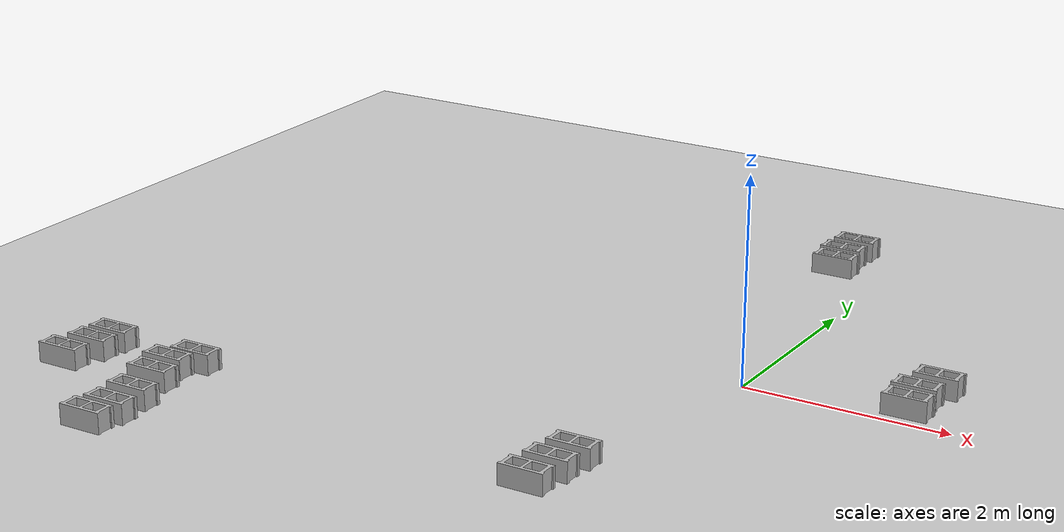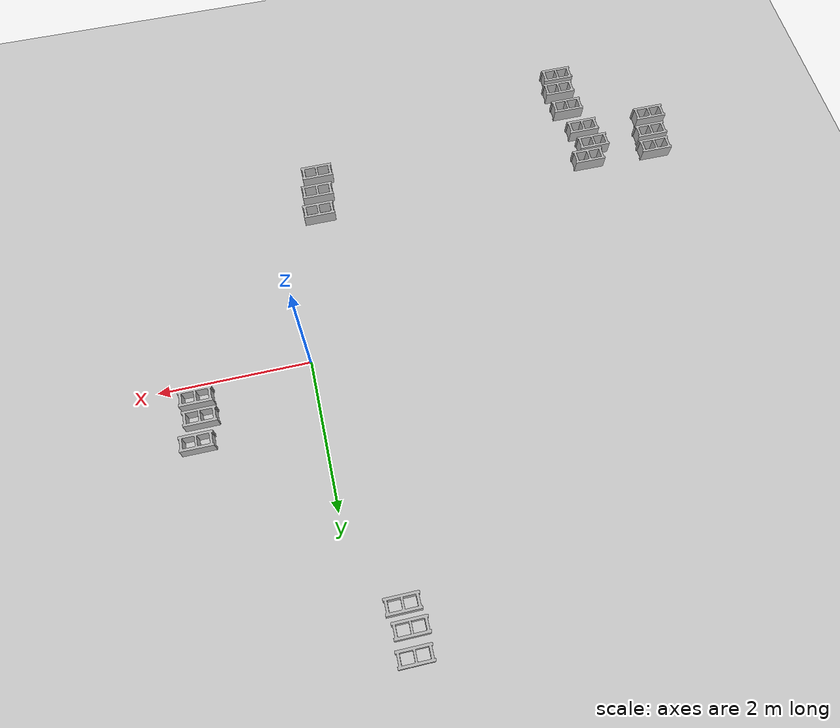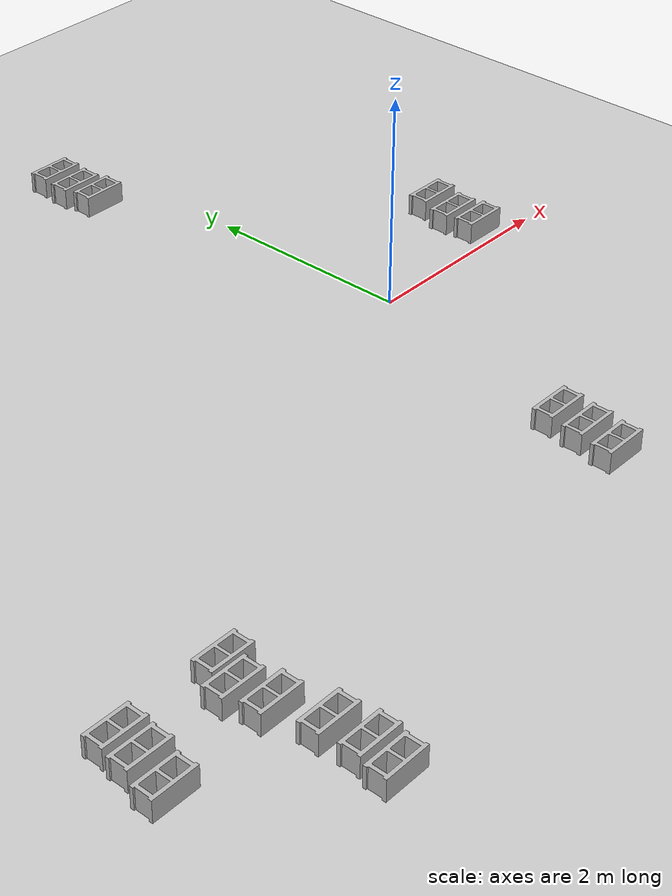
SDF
<sdf version="1.6">
 <world name="default">
  <light name="sun" type="directional">
   <pose>0 0 10 0 -0 0</pose>
   <diffuse>0.8 0.8 0.8 1</diffuse>
   <specular>0.2 0.2 0.2 1</specular>
   <attenuation>
    <range>1000</range>
    <constant>0.9</constant>
    <linear>0.01</linear>
    <quadratic>0.001</quadratic>
   </attenuation>
   <direction>-0.5 0.1 -0.9</direction>
  </light>
  <model name="ground_plane">
   <static>1</static>
   <link name="link">
    <collision name="collision">
     <geometry><plane><normal>0 0 1</normal><size>100 100</size></plane></geometry>
     <surface>
      <contact><collide_bitmask>65535</collide_bitmask></contact>
      <friction><ode><mu>100</mu><mu2>50</mu2></ode></friction>
     </surface>
    </collision>
    <visual name="visual">
     <cast_shadows>0</cast_shadows>
     <geometry><plane><normal>0 0 1</normal><size>100 100</size></plane></geometry>
     <material>
      <script><uri>file://media/materials/scripts/gazebo.material</uri><name>Gazebo/Grey</name></script>
     </material>
    </visual>
   </link>
  </model>
  <gravity>0 0 -9.8</gravity>
  <magnetic_field>6e-06 2.3e-05 -4.2e-05</magnetic_field>
  <atmosphere type="adiabatic"/>
  <physics name="default_physics" default="0" type="ode">
   <max_step_size>0.001</max_step_size>
   <real_time_factor>1</real_time_factor>
   <real_time_update_rate>1000</real_time_update_rate>
  </physics>
  <scene><ambient>0.4 0.4 0.4 1</ambient><background>0.7 0.7 0.7 1</background><shadows>1</shadows></scene>
  <audio><device>default</device></audio>
  <spherical_coordinates>
   <surface_model>EARTH_WGS84</surface_model>
   <latitude_deg>0</latitude_deg>
   <longitude_deg>0</longitude_deg>
   <elevation>0</elevation>
   <heading_deg>0</heading_deg>
  </spherical_coordinates>
  <model name="cinder_block">
   <link name="link">
    <inertial>
     <pose>0 0 0.1016 0 -0 0</pose>
     <mass>5</mass>
     <inertia>
      <ixx>0.028705</ixx>
      <ixy>0</ixy>
      <iyy>0.073708</iyy>
      <ixz>0</ixz>
      <iyz>0</iyz>
      <izz>0.06908</izz>
     </inertia>
    </inertial>
    <visual name="visual">
     <geometry><mesh><uri>model://cinder_block/meshes/cinder_block.dae</uri></mesh></geometry>
    </visual>
    <collision name="left">
     <pose>0 -0.08465 0.1016 0 -0 0</pose>
     <geometry><box><size>0.43495 0.0339 0.2032</size></box></geometry>
     <surface>
      <contact><ode><max_vel>0.1</max_vel><min_depth>0.001</min_depth></ode></contact>
      <friction><ode><mu>1</mu><mu2>1</mu2></ode></friction>
     </surface>
    </collision>
    <collision name="right">
     <pose>0 0.08465 0.1016 0 -0 0</pose>
     <geometry><box><size>0.43495 0.0339 0.2032</size></box></geometry>
     <surface>
      <contact><ode><max_vel>0.1</max_vel><min_depth>0.001</min_depth></ode></contact>
      <friction><ode><mu>1</mu><mu2>1</mu2></ode></friction>
     </surface>
    </collision>
    <collision name="front">
     <pose>0.18625 0 0.1016 0 -0 0</pose>
     <geometry><box><size>0.0339 0.1354 0.203</size></box></geometry>
     <surface>
      <contact><ode><max_vel>0.1</max_vel><min_depth>0.001</min_depth></ode></contact>
      <friction><ode><mu>1</mu><mu2>1</mu2></ode></friction>
     </surface>
    </collision>
    <collision name="middle">
     <pose>0 0 0.1016 0 -0 0</pose>
     <geometry><box><size>0.0339 0.1354 0.203</size></box></geometry>
     <surface>
      <contact><ode><max_vel>0.1</max_vel><min_depth>0.001</min_depth></ode></contact>
      <friction><ode><mu>1</mu><mu2>1</mu2></ode></friction>
     </surface>
    </collision>
    <collision name="back">
     <pose>-0.18625 0 0.1016 0 -0 0</pose>
     <geometry><box><size>0.0339 0.1354 0.203</size></box></geometry>
     <surface>
      <contact><ode><max_vel>0.1</max_vel><min_depth>0.001</min_depth></ode></contact>
      <friction><ode><mu>1</mu><mu2>1</mu2></ode></friction>
     </surface>
    </collision>
   </link>
   <pose>-0.534527 3.2056 -6e-06 -1e-06 2.8e-05 -0</pose>
  </model>
  <model name="cinder_block_0">
   <link name="link">
    <inertial>
     <pose>0 0 0.1016 0 -0 0</pose>
     <mass>5</mass>
     <inertia>
      <ixx>0.028705</ixx>
      <ixy>0</ixy>
      <iyy>0.073708</iyy>
      <ixz>0</ixz>
      <iyz>0</iyz>
      <izz>0.06908</izz>
     </inertia>
    </inertial>
    <visual name="visual">
     <geometry><mesh><uri>model://cinder_block/meshes/cinder_block.dae</uri></mesh></geometry>
    </visual>
    <collision name="left">
     <pose>0 -0.08465 0.1016 0 -0 0</pose>
     <geometry><box><size>0.43495 0.0339 0.2032</size></box></geometry>
     <surface>
      <contact><ode><max_vel>0.1</max_vel><min_depth>0.001</min_depth></ode></contact>
      <friction><ode><mu>1</mu><mu2>1</mu2></ode></friction>
     </surface>
    </collision>
    <collision name="right">
     <pose>0 0.08465 0.1016 0 -0 0</pose>
     <geometry><box><size>0.43495 0.0339 0.2032</size></box></geometry>
     <surface>
      <contact><ode><max_vel>0.1</max_vel><min_depth>0.001</min_depth></ode></contact>
      <friction><ode><mu>1</mu><mu2>1</mu2></ode></friction>
     </surface>
    </collision>
    <collision name="front">
     <pose>0.18625 0 0.1016 0 -0 0</pose>
     <geometry><box><size>0.0339 0.1354 0.203</size></box></geometry>
     <surface>
      <contact><ode><max_vel>0.1</max_vel><min_depth>0.001</min_depth></ode></contact>
      <friction><ode><mu>1</mu><mu2>1</mu2></ode></friction>
     </surface>
    </collision>
    <collision name="middle">
     <pose>0 0 0.1016 0 -0 0</pose>
     <geometry><box><size>0.0339 0.1354 0.203</size></box></geometry>
     <surface>
      <contact><ode><max_vel>0.1</max_vel><min_depth>0.001</min_depth></ode></contact>
      <friction><ode><mu>1</mu><mu2>1</mu2></ode></friction>
     </surface>
    </collision>
    <collision name="back">
     <pose>-0.18625 0 0.1016 0 -0 0</pose>
     <geometry><box><size>0.0339 0.1354 0.203</size></box></geometry>
     <surface>
      <contact><ode><max_vel>0.1</max_vel><min_depth>0.001</min_depth></ode></contact>
      <friction><ode><mu>1</mu><mu2>1</mu2></ode></friction>
     </surface>
    </collision>
   </link>
   <pose>-0.573603 3.47897 -6e-06 -1e-06 2.8e-05 -0</pose>
  </model>
  <model name="cinder_block_1">
   <link name="link">
    <inertial>
     <pose>0 0 0.1016 0 -0 0</pose>
     <mass>5</mass>
     <inertia>
      <ixx>0.028705</ixx>
      <ixy>0</ixy>
      <iyy>0.073708</iyy>
      <ixz>0</ixz>
      <iyz>0</iyz>
      <izz>0.06908</izz>
     </inertia>
    </inertial>
    <visual name="visual">
     <geometry><mesh><uri>model://cinder_block/meshes/cinder_block.dae</uri></mesh></geometry>
    </visual>
    <collision name="left">
     <pose>0 -0.08465 0.1016 0 -0 0</pose>
     <geometry><box><size>0.43495 0.0339 0.2032</size></box></geometry>
     <surface>
      <contact><ode><max_vel>0.1</max_vel><min_depth>0.001</min_depth></ode></contact>
      <friction><ode><mu>1</mu><mu2>1</mu2></ode></friction>
     </surface>
    </collision>
    <collision name="right">
     <pose>0 0.08465 0.1016 0 -0 0</pose>
     <geometry><box><size>0.43495 0.0339 0.2032</size></box></geometry>
     <surface>
      <contact><ode><max_vel>0.1</max_vel><min_depth>0.001</min_depth></ode></contact>
      <friction><ode><mu>1</mu><mu2>1</mu2></ode></friction>
     </surface>
    </collision>
    <collision name="front">
     <pose>0.18625 0 0.1016 0 -0 0</pose>
     <geometry><box><size>0.0339 0.1354 0.203</size></box></geometry>
     <surface>
      <contact><ode><max_vel>0.1</max_vel><min_depth>0.001</min_depth></ode></contact>
      <friction><ode><mu>1</mu><mu2>1</mu2></ode></friction>
     </surface>
    </collision>
    <collision name="middle">
     <pose>0 0 0.1016 0 -0 0</pose>
     <geometry><box><size>0.0339 0.1354 0.203</size></box></geometry>
     <surface>
      <contact><ode><max_vel>0.1</max_vel><min_depth>0.001</min_depth></ode></contact>
      <friction><ode><mu>1</mu><mu2>1</mu2></ode></friction>
     </surface>
    </collision>
    <collision name="back">
     <pose>-0.18625 0 0.1016 0 -0 0</pose>
     <geometry><box><size>0.0339 0.1354 0.203</size></box></geometry>
     <surface>
      <contact><ode><max_vel>0.1</max_vel><min_depth>0.001</min_depth></ode></contact>
      <friction><ode><mu>1</mu><mu2>1</mu2></ode></friction>
     </surface>
    </collision>
   </link>
   <pose>-0.554882 3.78025 -6e-06 -1e-06 2.8e-05 -0</pose>
  </model>
  <model name="cinder_block_2">
   <link name="link">
    <inertial>
     <pose>0 0 0.1016 0 -0 0</pose>
     <mass>5</mass>
     <inertia>
      <ixx>0.028705</ixx>
      <ixy>0</ixy>
      <iyy>0.073708</iyy>
      <ixz>0</ixz>
      <iyz>0</iyz>
      <izz>0.06908</izz>
     </inertia>
    </inertial>
    <visual name="visual">
     <geometry><mesh><uri>model://cinder_block/meshes/cinder_block.dae</uri></mesh></geometry>
    </visual>
    <collision name="left">
     <pose>0 -0.08465 0.1016 0 -0 0</pose>
     <geometry><box><size>0.43495 0.0339 0.2032</size></box></geometry>
     <surface>
      <contact><ode><max_vel>0.1</max_vel><min_depth>0.001</min_depth></ode></contact>
      <friction><ode><mu>1</mu><mu2>1</mu2></ode></friction>
     </surface>
    </collision>
    <collision name="right">
     <pose>0 0.08465 0.1016 0 -0 0</pose>
     <geometry><box><size>0.43495 0.0339 0.2032</size></box></geometry>
     <surface>
      <contact><ode><max_vel>0.1</max_vel><min_depth>0.001</min_depth></ode></contact>
      <friction><ode><mu>1</mu><mu2>1</mu2></ode></friction>
     </surface>
    </collision>
    <collision name="front">
     <pose>0.18625 0 0.1016 0 -0 0</pose>
     <geometry><box><size>0.0339 0.1354 0.203</size></box></geometry>
     <surface>
      <contact><ode><max_vel>0.1</max_vel><min_depth>0.001</min_depth></ode></contact>
      <friction><ode><mu>1</mu><mu2>1</mu2></ode></friction>
     </surface>
    </collision>
    <collision name="middle">
     <pose>0 0 0.1016 0 -0 0</pose>
     <geometry><box><size>0.0339 0.1354 0.203</size></box></geometry>
     <surface>
      <contact><ode><max_vel>0.1</max_vel><min_depth>0.001</min_depth></ode></contact>
      <friction><ode><mu>1</mu><mu2>1</mu2></ode></friction>
     </surface>
    </collision>
    <collision name="back">
     <pose>-0.18625 0 0.1016 0 -0 0</pose>
     <geometry><box><size>0.0339 0.1354 0.203</size></box></geometry>
     <surface>
      <contact><ode><max_vel>0.1</max_vel><min_depth>0.001</min_depth></ode></contact>
      <friction><ode><mu>1</mu><mu2>1</mu2></ode></friction>
     </surface>
    </collision>
   </link>
   <pose>1.50331 0.204319 -6e-06 -1e-06 2.8e-05 -0</pose>
  </model>
  <model name="cinder_block_3">
   <link name="link">
    <inertial>
     <pose>0 0 0.1016 0 -0 0</pose>
     <mass>5</mass>
     <inertia>
      <ixx>0.028705</ixx>
      <ixy>0</ixy>
      <iyy>0.073708</iyy>
      <ixz>0</ixz>
      <iyz>0</iyz>
      <izz>0.06908</izz>
     </inertia>
    </inertial>
    <visual name="visual">
     <geometry><mesh><uri>model://cinder_block/meshes/cinder_block.dae</uri></mesh></geometry>
    </visual>
    <collision name="left">
     <pose>0 -0.08465 0.1016 0 -0 0</pose>
     <geometry><box><size>0.43495 0.0339 0.2032</size></box></geometry>
     <surface>
      <contact><ode><max_vel>0.1</max_vel><min_depth>0.001</min_depth></ode></contact>
      <friction><ode><mu>1</mu><mu2>1</mu2></ode></friction>
     </surface>
    </collision>
    <collision name="right">
     <pose>0 0.08465 0.1016 0 -0 0</pose>
     <geometry><box><size>0.43495 0.0339 0.2032</size></box></geometry>
     <surface>
      <contact><ode><max_vel>0.1</max_vel><min_depth>0.001</min_depth></ode></contact>
      <friction><ode><mu>1</mu><mu2>1</mu2></ode></friction>
     </surface>
    </collision>
    <collision name="front">
     <pose>0.18625 0 0.1016 0 -0 0</pose>
     <geometry><box><size>0.0339 0.1354 0.203</size></box></geometry>
     <surface>
      <contact><ode><max_vel>0.1</max_vel><min_depth>0.001</min_depth></ode></contact>
      <friction><ode><mu>1</mu><mu2>1</mu2></ode></friction>
     </surface>
    </collision>
    <collision name="middle">
     <pose>0 0 0.1016 0 -0 0</pose>
     <geometry><box><size>0.0339 0.1354 0.203</size></box></geometry>
     <surface>
      <contact><ode><max_vel>0.1</max_vel><min_depth>0.001</min_depth></ode></contact>
      <friction><ode><mu>1</mu><mu2>1</mu2></ode></friction>
     </surface>
    </collision>
    <collision name="back">
     <pose>-0.18625 0 0.1016 0 -0 0</pose>
     <geometry><box><size>0.0339 0.1354 0.203</size></box></geometry>
     <surface>
      <contact><ode><max_vel>0.1</max_vel><min_depth>0.001</min_depth></ode></contact>
      <friction><ode><mu>1</mu><mu2>1</mu2></ode></friction>
     </surface>
    </collision>
   </link>
   <pose>1.47859 0.477408 -6e-06 -1e-06 2.8e-05 -0</pose>
  </model>
  <model name="cinder_block_4">
   <link name="link">
    <inertial>
     <pose>0 0 0.1016 0 -0 0</pose>
     <mass>5</mass>
     <inertia>
      <ixx>0.028705</ixx>
      <ixy>0</ixy>
      <iyy>0.073708</iyy>
      <ixz>0</ixz>
      <iyz>0</iyz>
      <izz>0.06908</izz>
     </inertia>
    </inertial>
    <visual name="visual">
     <geometry><mesh><uri>model://cinder_block/meshes/cinder_block.dae</uri></mesh></geometry>
    </visual>
    <collision name="left">
     <pose>0 -0.08465 0.1016 0 -0 0</pose>
     <geometry><box><size>0.43495 0.0339 0.2032</size></box></geometry>
     <surface>
      <contact><ode><max_vel>0.1</max_vel><min_depth>0.001</min_depth></ode></contact>
      <friction><ode><mu>1</mu><mu2>1</mu2></ode></friction>
     </surface>
    </collision>
    <collision name="right">
     <pose>0 0.08465 0.1016 0 -0 0</pose>
     <geometry><box><size>0.43495 0.0339 0.2032</size></box></geometry>
     <surface>
      <contact><ode><max_vel>0.1</max_vel><min_depth>0.001</min_depth></ode></contact>
      <friction><ode><mu>1</mu><mu2>1</mu2></ode></friction>
     </surface>
    </collision>
    <collision name="front">
     <pose>0.18625 0 0.1016 0 -0 0</pose>
     <geometry><box><size>0.0339 0.1354 0.203</size></box></geometry>
     <surface>
      <contact><ode><max_vel>0.1</max_vel><min_depth>0.001</min_depth></ode></contact>
      <friction><ode><mu>1</mu><mu2>1</mu2></ode></friction>
     </surface>
    </collision>
    <collision name="middle">
     <pose>0 0 0.1016 0 -0 0</pose>
     <geometry><box><size>0.0339 0.1354 0.203</size></box></geometry>
     <surface>
      <contact><ode><max_vel>0.1</max_vel><min_depth>0.001</min_depth></ode></contact>
      <friction><ode><mu>1</mu><mu2>1</mu2></ode></friction>
     </surface>
    </collision>
    <collision name="back">
     <pose>-0.18625 0 0.1016 0 -0 0</pose>
     <geometry><box><size>0.0339 0.1354 0.203</size></box></geometry>
     <surface>
      <contact><ode><max_vel>0.1</max_vel><min_depth>0.001</min_depth></ode></contact>
      <friction><ode><mu>1</mu><mu2>1</mu2></ode></friction>
     </surface>
    </collision>
   </link>
   <pose>1.555 0.792073 -6e-06 -1e-06 2.8e-05 -0</pose>
  </model>
  <model name="cinder_block_5">
   <link name="link">
    <inertial>
     <pose>0 0 0.1016 0 -0 0</pose>
     <mass>5</mass>
     <inertia>
      <ixx>0.028705</ixx>
      <ixy>0</ixy>
      <iyy>0.073708</iyy>
      <ixz>0</ixz>
      <iyz>0</iyz>
      <izz>0.06908</izz>
     </inertia>
    </inertial>
    <visual name="visual">
     <geometry><mesh><uri>model://cinder_block/meshes/cinder_block.dae</uri></mesh></geometry>
    </visual>
    <collision name="left">
     <pose>0 -0.08465 0.1016 0 -0 0</pose>
     <geometry><box><size>0.43495 0.0339 0.2032</size></box></geometry>
     <surface>
      <contact><ode><max_vel>0.1</max_vel><min_depth>0.001</min_depth></ode></contact>
      <friction><ode><mu>1</mu><mu2>1</mu2></ode></friction>
     </surface>
    </collision>
    <collision name="right">
     <pose>0 0.08465 0.1016 0 -0 0</pose>
     <geometry><box><size>0.43495 0.0339 0.2032</size></box></geometry>
     <surface>
      <contact><ode><max_vel>0.1</max_vel><min_depth>0.001</min_depth></ode></contact>
      <friction><ode><mu>1</mu><mu2>1</mu2></ode></friction>
     </surface>
    </collision>
    <collision name="front">
     <pose>0.18625 0 0.1016 0 -0 0</pose>
     <geometry><box><size>0.0339 0.1354 0.203</size></box></geometry>
     <surface>
      <contact><ode><max_vel>0.1</max_vel><min_depth>0.001</min_depth></ode></contact>
      <friction><ode><mu>1</mu><mu2>1</mu2></ode></friction>
     </surface>
    </collision>
    <collision name="middle">
     <pose>0 0 0.1016 0 -0 0</pose>
     <geometry><box><size>0.0339 0.1354 0.203</size></box></geometry>
     <surface>
      <contact><ode><max_vel>0.1</max_vel><min_depth>0.001</min_depth></ode></contact>
      <friction><ode><mu>1</mu><mu2>1</mu2></ode></friction>
     </surface>
    </collision>
    <collision name="back">
     <pose>-0.18625 0 0.1016 0 -0 0</pose>
     <geometry><box><size>0.0339 0.1354 0.203</size></box></geometry>
     <surface>
      <contact><ode><max_vel>0.1</max_vel><min_depth>0.001</min_depth></ode></contact>
      <friction><ode><mu>1</mu><mu2>1</mu2></ode></friction>
     </surface>
    </collision>
   </link>
   <pose>-0.488266 -2.18558 -6e-06 -1e-06 2.8e-05 -0</pose>
  </model>
  <model name="cinder_block_6">
   <link name="link">
    <inertial>
     <pose>0 0 0.1016 0 -0 0</pose>
     <mass>5</mass>
     <inertia>
      <ixx>0.028705</ixx>
      <ixy>0</ixy>
      <iyy>0.073708</iyy>
      <ixz>0</ixz>
      <iyz>0</iyz>
      <izz>0.06908</izz>
     </inertia>
    </inertial>
    <visual name="visual">
     <geometry><mesh><uri>model://cinder_block/meshes/cinder_block.dae</uri></mesh></geometry>
    </visual>
    <collision name="left">
     <pose>0 -0.08465 0.1016 0 -0 0</pose>
     <geometry><box><size>0.43495 0.0339 0.2032</size></box></geometry>
     <surface>
      <contact><ode><max_vel>0.1</max_vel><min_depth>0.001</min_depth></ode></contact>
      <friction><ode><mu>1</mu><mu2>1</mu2></ode></friction>
     </surface>
    </collision>
    <collision name="right">
     <pose>0 0.08465 0.1016 0 -0 0</pose>
     <geometry><box><size>0.43495 0.0339 0.2032</size></box></geometry>
     <surface>
      <contact><ode><max_vel>0.1</max_vel><min_depth>0.001</min_depth></ode></contact>
      <friction><ode><mu>1</mu><mu2>1</mu2></ode></friction>
     </surface>
    </collision>
    <collision name="front">
     <pose>0.18625 0 0.1016 0 -0 0</pose>
     <geometry><box><size>0.0339 0.1354 0.203</size></box></geometry>
     <surface>
      <contact><ode><max_vel>0.1</max_vel><min_depth>0.001</min_depth></ode></contact>
      <friction><ode><mu>1</mu><mu2>1</mu2></ode></friction>
     </surface>
    </collision>
    <collision name="middle">
     <pose>0 0 0.1016 0 -0 0</pose>
     <geometry><box><size>0.0339 0.1354 0.203</size></box></geometry>
     <surface>
      <contact><ode><max_vel>0.1</max_vel><min_depth>0.001</min_depth></ode></contact>
      <friction><ode><mu>1</mu><mu2>1</mu2></ode></friction>
     </surface>
    </collision>
    <collision name="back">
     <pose>-0.18625 0 0.1016 0 -0 0</pose>
     <geometry><box><size>0.0339 0.1354 0.203</size></box></geometry>
     <surface>
      <contact><ode><max_vel>0.1</max_vel><min_depth>0.001</min_depth></ode></contact>
      <friction><ode><mu>1</mu><mu2>1</mu2></ode></friction>
     </surface>
    </collision>
   </link>
   <pose>-0.523041 -2.50218 -6e-06 -1e-06 2.8e-05 -0</pose>
  </model>
  <model name="cinder_block_7">
   <link name="link">
    <inertial>
     <pose>0 0 0.1016 0 -0 0</pose>
     <mass>5</mass>
     <inertia>
      <ixx>0.028705</ixx>
      <ixy>0</ixy>
      <iyy>0.073708</iyy>
      <ixz>0</ixz>
      <iyz>0</iyz>
      <izz>0.06908</izz>
     </inertia>
    </inertial>
    <visual name="visual">
     <geometry><mesh><uri>model://cinder_block/meshes/cinder_block.dae</uri></mesh></geometry>
    </visual>
    <collision name="left">
     <pose>0 -0.08465 0.1016 0 -0 0</pose>
     <geometry><box><size>0.43495 0.0339 0.2032</size></box></geometry>
     <surface>
      <contact><ode><max_vel>0.1</max_vel><min_depth>0.001</min_depth></ode></contact>
      <friction><ode><mu>1</mu><mu2>1</mu2></ode></friction>
     </surface>
    </collision>
    <collision name="right">
     <pose>0 0.08465 0.1016 0 -0 0</pose>
     <geometry><box><size>0.43495 0.0339 0.2032</size></box></geometry>
     <surface>
      <contact><ode><max_vel>0.1</max_vel><min_depth>0.001</min_depth></ode></contact>
      <friction><ode><mu>1</mu><mu2>1</mu2></ode></friction>
     </surface>
    </collision>
    <collision name="front">
     <pose>0.18625 0 0.1016 0 -0 0</pose>
     <geometry><box><size>0.0339 0.1354 0.203</size></box></geometry>
     <surface>
      <contact><ode><max_vel>0.1</max_vel><min_depth>0.001</min_depth></ode></contact>
      <friction><ode><mu>1</mu><mu2>1</mu2></ode></friction>
     </surface>
    </collision>
    <collision name="middle">
     <pose>0 0 0.1016 0 -0 0</pose>
     <geometry><box><size>0.0339 0.1354 0.203</size></box></geometry>
     <surface>
      <contact><ode><max_vel>0.1</max_vel><min_depth>0.001</min_depth></ode></contact>
      <friction><ode><mu>1</mu><mu2>1</mu2></ode></friction>
     </surface>
    </collision>
    <collision name="back">
     <pose>-0.18625 0 0.1016 0 -0 0</pose>
     <geometry><box><size>0.0339 0.1354 0.203</size></box></geometry>
     <surface>
      <contact><ode><max_vel>0.1</max_vel><min_depth>0.001</min_depth></ode></contact>
      <friction><ode><mu>1</mu><mu2>1</mu2></ode></friction>
     </surface>
    </collision>
   </link>
   <pose>-0.570255 -2.81822 -6e-06 -1e-06 2.8e-05 -0</pose>
  </model>
  <model name="cinder_block_8">
   <link name="link">
    <inertial>
     <pose>0 0 0.1016 0 -0 0</pose>
     <mass>5</mass>
     <inertia>
      <ixx>0.028705</ixx>
      <ixy>0</ixy>
      <iyy>0.073708</iyy>
      <ixz>0</ixz>
      <iyz>0</iyz>
      <izz>0.06908</izz>
     </inertia>
    </inertial>
    <visual name="visual">
     <geometry><mesh><uri>model://cinder_block/meshes/cinder_block.dae</uri></mesh></geometry>
    </visual>
    <collision name="left">
     <pose>0 -0.08465 0.1016 0 -0 0</pose>
     <geometry><box><size>0.43495 0.0339 0.2032</size></box></geometry>
     <surface>
      <contact><ode><max_vel>0.1</max_vel><min_depth>0.001</min_depth></ode></contact>
      <friction><ode><mu>1</mu><mu2>1</mu2></ode></friction>
     </surface>
    </collision>
    <collision name="right">
     <pose>0 0.08465 0.1016 0 -0 0</pose>
     <geometry><box><size>0.43495 0.0339 0.2032</size></box></geometry>
     <surface>
      <contact><ode><max_vel>0.1</max_vel><min_depth>0.001</min_depth></ode></contact>
      <friction><ode><mu>1</mu><mu2>1</mu2></ode></friction>
     </surface>
    </collision>
    <collision name="front">
     <pose>0.18625 0 0.1016 0 -0 0</pose>
     <geometry><box><size>0.0339 0.1354 0.203</size></box></geometry>
     <surface>
      <contact><ode><max_vel>0.1</max_vel><min_depth>0.001</min_depth></ode></contact>
      <friction><ode><mu>1</mu><mu2>1</mu2></ode></friction>
     </surface>
    </collision>
    <collision name="middle">
     <pose>0 0 0.1016 0 -0 0</pose>
     <geometry><box><size>0.0339 0.1354 0.203</size></box></geometry>
     <surface>
      <contact><ode><max_vel>0.1</max_vel><min_depth>0.001</min_depth></ode></contact>
      <friction><ode><mu>1</mu><mu2>1</mu2></ode></friction>
     </surface>
    </collision>
    <collision name="back">
     <pose>-0.18625 0 0.1016 0 -0 0</pose>
     <geometry><box><size>0.0339 0.1354 0.203</size></box></geometry>
     <surface>
      <contact><ode><max_vel>0.1</max_vel><min_depth>0.001</min_depth></ode></contact>
      <friction><ode><mu>1</mu><mu2>1</mu2></ode></friction>
     </surface>
    </collision>
   </link>
   <pose>-4.46483 -2.24714 -6e-06 -1e-06 2.8e-05 -0</pose>
  </model>
  <model name="cinder_block_9">
   <link name="link">
    <inertial>
     <pose>0 0 0.1016 0 -0 0</pose>
     <mass>5</mass>
     <inertia>
      <ixx>0.028705</ixx>
      <ixy>0</ixy>
      <iyy>0.073708</iyy>
      <ixz>0</ixz>
      <iyz>0</iyz>
      <izz>0.06908</izz>
     </inertia>
    </inertial>
    <visual name="visual">
     <geometry><mesh><uri>model://cinder_block/meshes/cinder_block.dae</uri></mesh></geometry>
    </visual>
    <collision name="left">
     <pose>0 -0.08465 0.1016 0 -0 0</pose>
     <geometry><box><size>0.43495 0.0339 0.2032</size></box></geometry>
     <surface>
      <contact><ode><max_vel>0.1</max_vel><min_depth>0.001</min_depth></ode></contact>
      <friction><ode><mu>1</mu><mu2>1</mu2></ode></friction>
     </surface>
    </collision>
    <collision name="right">
     <pose>0 0.08465 0.1016 0 -0 0</pose>
     <geometry><box><size>0.43495 0.0339 0.2032</size></box></geometry>
     <surface>
      <contact><ode><max_vel>0.1</max_vel><min_depth>0.001</min_depth></ode></contact>
      <friction><ode><mu>1</mu><mu2>1</mu2></ode></friction>
     </surface>
    </collision>
    <collision name="front">
     <pose>0.18625 0 0.1016 0 -0 0</pose>
     <geometry><box><size>0.0339 0.1354 0.203</size></box></geometry>
     <surface>
      <contact><ode><max_vel>0.1</max_vel><min_depth>0.001</min_depth></ode></contact>
      <friction><ode><mu>1</mu><mu2>1</mu2></ode></friction>
     </surface>
    </collision>
    <collision name="middle">
     <pose>0 0 0.1016 0 -0 0</pose>
     <geometry><box><size>0.0339 0.1354 0.203</size></box></geometry>
     <surface>
      <contact><ode><max_vel>0.1</max_vel><min_depth>0.001</min_depth></ode></contact>
      <friction><ode><mu>1</mu><mu2>1</mu2></ode></friction>
     </surface>
    </collision>
    <collision name="back">
     <pose>-0.18625 0 0.1016 0 -0 0</pose>
     <geometry><box><size>0.0339 0.1354 0.203</size></box></geometry>
     <surface>
      <contact><ode><max_vel>0.1</max_vel><min_depth>0.001</min_depth></ode></contact>
      <friction><ode><mu>1</mu><mu2>1</mu2></ode></friction>
     </surface>
    </collision>
   </link>
   <pose>-4.60389 -2.47746 -6e-06 -1e-06 2.8e-05 -0</pose>
  </model>
  <model name="cinder_block_10">
   <link name="link">
    <inertial>
     <pose>0 0 0.1016 0 -0 0</pose>
     <mass>5</mass>
     <inertia>
      <ixx>0.028705</ixx>
      <ixy>0</ixy>
      <iyy>0.073708</iyy>
      <ixz>0</ixz>
      <iyz>0</iyz>
      <izz>0.06908</izz>
     </inertia>
    </inertial>
    <visual name="visual">
     <geometry><mesh><uri>model://cinder_block/meshes/cinder_block.dae</uri></mesh></geometry>
    </visual>
    <collision name="left">
     <pose>0 -0.08465 0.1016 0 -0 0</pose>
     <geometry><box><size>0.43495 0.0339 0.2032</size></box></geometry>
     <surface>
      <contact><ode><max_vel>0.1</max_vel><min_depth>0.001</min_depth></ode></contact>
      <friction><ode><mu>1</mu><mu2>1</mu2></ode></friction>
     </surface>
    </collision>
    <collision name="right">
     <pose>0 0.08465 0.1016 0 -0 0</pose>
     <geometry><box><size>0.43495 0.0339 0.2032</size></box></geometry>
     <surface>
      <contact><ode><max_vel>0.1</max_vel><min_depth>0.001</min_depth></ode></contact>
      <friction><ode><mu>1</mu><mu2>1</mu2></ode></friction>
     </surface>
    </collision>
    <collision name="front">
     <pose>0.18625 0 0.1016 0 -0 0</pose>
     <geometry><box><size>0.0339 0.1354 0.203</size></box></geometry>
     <surface>
      <contact><ode><max_vel>0.1</max_vel><min_depth>0.001</min_depth></ode></contact>
      <friction><ode><mu>1</mu><mu2>1</mu2></ode></friction>
     </surface>
    </collision>
    <collision name="middle">
     <pose>0 0 0.1016 0 -0 0</pose>
     <geometry><box><size>0.0339 0.1354 0.203</size></box></geometry>
     <surface>
      <contact><ode><max_vel>0.1</max_vel><min_depth>0.001</min_depth></ode></contact>
      <friction><ode><mu>1</mu><mu2>1</mu2></ode></friction>
     </surface>
    </collision>
    <collision name="back">
     <pose>-0.18625 0 0.1016 0 -0 0</pose>
     <geometry><box><size>0.0339 0.1354 0.203</size></box></geometry>
     <surface>
      <contact><ode><max_vel>0.1</max_vel><min_depth>0.001</min_depth></ode></contact>
      <friction><ode><mu>1</mu><mu2>1</mu2></ode></friction>
     </surface>
    </collision>
   </link>
   <pose>-4.53765 -2.77321 -6e-06 -1e-06 2.8e-05 -0</pose>
  </model>
  <model name="cinder_block_11">
   <link name="link">
    <inertial>
     <pose>0 0 0.1016 0 -0 0</pose>
     <mass>5</mass>
     <inertia>
      <ixx>0.028705</ixx>
      <ixy>0</ixy>
      <iyy>0.073708</iyy>
      <ixz>0</ixz>
      <iyz>0</iyz>
      <izz>0.06908</izz>
     </inertia>
    </inertial>
    <visual name="visual">
     <geometry><mesh><uri>model://cinder_block/meshes/cinder_block.dae</uri></mesh></geometry>
    </visual>
    <collision name="left">
     <pose>0 -0.08465 0.1016 0 -0 0</pose>
     <geometry><box><size>0.43495 0.0339 0.2032</size></box></geometry>
     <surface>
      <contact><ode><max_vel>0.1</max_vel><min_depth>0.001</min_depth></ode></contact>
      <friction><ode><mu>1</mu><mu2>1</mu2></ode></friction>
     </surface>
    </collision>
    <collision name="right">
     <pose>0 0.08465 0.1016 0 -0 0</pose>
     <geometry><box><size>0.43495 0.0339 0.2032</size></box></geometry>
     <surface>
      <contact><ode><max_vel>0.1</max_vel><min_depth>0.001</min_depth></ode></contact>
      <friction><ode><mu>1</mu><mu2>1</mu2></ode></friction>
     </surface>
    </collision>
    <collision name="front">
     <pose>0.18625 0 0.1016 0 -0 0</pose>
     <geometry><box><size>0.0339 0.1354 0.203</size></box></geometry>
     <surface>
      <contact><ode><max_vel>0.1</max_vel><min_depth>0.001</min_depth></ode></contact>
      <friction><ode><mu>1</mu><mu2>1</mu2></ode></friction>
     </surface>
    </collision>
    <collision name="middle">
     <pose>0 0 0.1016 0 -0 0</pose>
     <geometry><box><size>0.0339 0.1354 0.203</size></box></geometry>
     <surface>
      <contact><ode><max_vel>0.1</max_vel><min_depth>0.001</min_depth></ode></contact>
      <friction><ode><mu>1</mu><mu2>1</mu2></ode></friction>
     </surface>
    </collision>
    <collision name="back">
     <pose>-0.18625 0 0.1016 0 -0 0</pose>
     <geometry><box><size>0.0339 0.1354 0.203</size></box></geometry>
     <surface>
      <contact><ode><max_vel>0.1</max_vel><min_depth>0.001</min_depth></ode></contact>
      <friction><ode><mu>1</mu><mu2>1</mu2></ode></friction>
     </surface>
    </collision>
   </link>
   <pose>-4.42176 -3.18554 -6e-06 -1e-06 2.8e-05 -0</pose>
  </model>
  <model name="cinder_block_12">
   <link name="link">
    <inertial>
     <pose>0 0 0.1016 0 -0 0</pose>
     <mass>5</mass>
     <inertia>
      <ixx>0.028705</ixx>
      <ixy>0</ixy>
      <iyy>0.073708</iyy>
      <ixz>0</ixz>
      <iyz>0</iyz>
      <izz>0.06908</izz>
     </inertia>
    </inertial>
    <visual name="visual">
     <geometry><mesh><uri>model://cinder_block/meshes/cinder_block.dae</uri></mesh></geometry>
    </visual>
    <collision name="left">
     <pose>0 -0.08465 0.1016 0 -0 0</pose>
     <geometry><box><size>0.43495 0.0339 0.2032</size></box></geometry>
     <surface>
      <contact><ode><max_vel>0.1</max_vel><min_depth>0.001</min_depth></ode></contact>
      <friction><ode><mu>1</mu><mu2>1</mu2></ode></friction>
     </surface>
    </collision>
    <collision name="right">
     <pose>0 0.08465 0.1016 0 -0 0</pose>
     <geometry><box><size>0.43495 0.0339 0.2032</size></box></geometry>
     <surface>
      <contact><ode><max_vel>0.1</max_vel><min_depth>0.001</min_depth></ode></contact>
      <friction><ode><mu>1</mu><mu2>1</mu2></ode></friction>
     </surface>
    </collision>
    <collision name="front">
     <pose>0.18625 0 0.1016 0 -0 0</pose>
     <geometry><box><size>0.0339 0.1354 0.203</size></box></geometry>
     <surface>
      <contact><ode><max_vel>0.1</max_vel><min_depth>0.001</min_depth></ode></contact>
      <friction><ode><mu>1</mu><mu2>1</mu2></ode></friction>
     </surface>
    </collision>
    <collision name="middle">
     <pose>0 0 0.1016 0 -0 0</pose>
     <geometry><box><size>0.0339 0.1354 0.203</size></box></geometry>
     <surface>
      <contact><ode><max_vel>0.1</max_vel><min_depth>0.001</min_depth></ode></contact>
      <friction><ode><mu>1</mu><mu2>1</mu2></ode></friction>
     </surface>
    </collision>
    <collision name="back">
     <pose>-0.18625 0 0.1016 0 -0 0</pose>
     <geometry><box><size>0.0339 0.1354 0.203</size></box></geometry>
     <surface>
      <contact><ode><max_vel>0.1</max_vel><min_depth>0.001</min_depth></ode></contact>
      <friction><ode><mu>1</mu><mu2>1</mu2></ode></friction>
     </surface>
    </collision>
   </link>
   <pose>-4.39217 -3.52146 -6e-06 -1e-06 2.8e-05 -0</pose>
  </model>
  <model name="cinder_block_13">
   <link name="link">
    <inertial>
     <pose>0 0 0.1016 0 -0 0</pose>
     <mass>5</mass>
     <inertia>
      <ixx>0.028705</ixx>
      <ixy>0</ixy>
      <iyy>0.073708</iyy>
      <ixz>0</ixz>
      <iyz>0</iyz>
      <izz>0.06908</izz>
     </inertia>
    </inertial>
    <visual name="visual">
     <geometry><mesh><uri>model://cinder_block/meshes/cinder_block.dae</uri></mesh></geometry>
    </visual>
    <collision name="left">
     <pose>0 -0.08465 0.1016 0 -0 0</pose>
     <geometry><box><size>0.43495 0.0339 0.2032</size></box></geometry>
     <surface>
      <contact><ode><max_vel>0.1</max_vel><min_depth>0.001</min_depth></ode></contact>
      <friction><ode><mu>1</mu><mu2>1</mu2></ode></friction>
     </surface>
    </collision>
    <collision name="right">
     <pose>0 0.08465 0.1016 0 -0 0</pose>
     <geometry><box><size>0.43495 0.0339 0.2032</size></box></geometry>
     <surface>
      <contact><ode><max_vel>0.1</max_vel><min_depth>0.001</min_depth></ode></contact>
      <friction><ode><mu>1</mu><mu2>1</mu2></ode></friction>
     </surface>
    </collision>
    <collision name="front">
     <pose>0.18625 0 0.1016 0 -0 0</pose>
     <geometry><box><size>0.0339 0.1354 0.203</size></box></geometry>
     <surface>
      <contact><ode><max_vel>0.1</max_vel><min_depth>0.001</min_depth></ode></contact>
      <friction><ode><mu>1</mu><mu2>1</mu2></ode></friction>
     </surface>
    </collision>
    <collision name="middle">
     <pose>0 0 0.1016 0 -0 0</pose>
     <geometry><box><size>0.0339 0.1354 0.203</size></box></geometry>
     <surface>
      <contact><ode><max_vel>0.1</max_vel><min_depth>0.001</min_depth></ode></contact>
      <friction><ode><mu>1</mu><mu2>1</mu2></ode></friction>
     </surface>
    </collision>
    <collision name="back">
     <pose>-0.18625 0 0.1016 0 -0 0</pose>
     <geometry><box><size>0.0339 0.1354 0.203</size></box></geometry>
     <surface>
      <contact><ode><max_vel>0.1</max_vel><min_depth>0.001</min_depth></ode></contact>
      <friction><ode><mu>1</mu><mu2>1</mu2></ode></friction>
     </surface>
    </collision>
   </link>
   <pose>-4.43525 -3.78179 -6e-06 0 2.8e-05 0</pose>
  </model>
  <model name="cinder_block_14">
   <link name="link">
    <inertial>
     <pose>0 0 0.1016 0 -0 0</pose>
     <mass>5</mass>
     <inertia>
      <ixx>0.028705</ixx>
      <ixy>0</ixy>
      <iyy>0.073708</iyy>
      <ixz>0</ixz>
      <iyz>0</iyz>
      <izz>0.06908</izz>
     </inertia>
    </inertial>
    <visual name="visual">
     <geometry><mesh><uri>model://cinder_block/meshes/cinder_block.dae</uri></mesh></geometry>
    </visual>
    <collision name="left">
     <pose>0 -0.08465 0.1016 0 -0 0</pose>
     <geometry><box><size>0.43495 0.0339 0.2032</size></box></geometry>
     <surface>
      <contact><ode><max_vel>0.1</max_vel><min_depth>0.001</min_depth></ode></contact>
      <friction><ode><mu>1</mu><mu2>1</mu2></ode></friction>
     </surface>
    </collision>
    <collision name="right">
     <pose>0 0.08465 0.1016 0 -0 0</pose>
     <geometry><box><size>0.43495 0.0339 0.2032</size></box></geometry>
     <surface>
      <contact><ode><max_vel>0.1</max_vel><min_depth>0.001</min_depth></ode></contact>
      <friction><ode><mu>1</mu><mu2>1</mu2></ode></friction>
     </surface>
    </collision>
    <collision name="front">
     <pose>0.18625 0 0.1016 0 -0 0</pose>
     <geometry><box><size>0.0339 0.1354 0.203</size></box></geometry>
     <surface>
      <contact><ode><max_vel>0.1</max_vel><min_depth>0.001</min_depth></ode></contact>
      <friction><ode><mu>1</mu><mu2>1</mu2></ode></friction>
     </surface>
    </collision>
    <collision name="middle">
     <pose>0 0 0.1016 0 -0 0</pose>
     <geometry><box><size>0.0339 0.1354 0.203</size></box></geometry>
     <surface>
      <contact><ode><max_vel>0.1</max_vel><min_depth>0.001</min_depth></ode></contact>
      <friction><ode><mu>1</mu><mu2>1</mu2></ode></friction>
     </surface>
    </collision>
    <collision name="back">
     <pose>-0.18625 0 0.1016 0 -0 0</pose>
     <geometry><box><size>0.0339 0.1354 0.203</size></box></geometry>
     <surface>
      <contact><ode><max_vel>0.1</max_vel><min_depth>0.001</min_depth></ode></contact>
      <friction><ode><mu>1</mu><mu2>1</mu2></ode></friction>
     </surface>
    </collision>
   </link>
   <pose>-5.46636 -2.22381 -6e-06 0 2.8e-05 0</pose>
  </model>
  <model name="cinder_block_15">
   <link name="link">
    <inertial>
     <pose>0 0 0.1016 0 -0 0</pose>
     <mass>5</mass>
     <inertia>
      <ixx>0.028705</ixx>
      <ixy>0</ixy>
      <iyy>0.073708</iyy>
      <ixz>0</ixz>
      <iyz>0</iyz>
      <izz>0.06908</izz>
     </inertia>
    </inertial>
    <visual name="visual">
     <geometry><mesh><uri>model://cinder_block/meshes/cinder_block.dae</uri></mesh></geometry>
    </visual>
    <collision name="left">
     <pose>0 -0.08465 0.1016 0 -0 0</pose>
     <geometry><box><size>0.43495 0.0339 0.2032</size></box></geometry>
     <surface>
      <contact><ode><max_vel>0.1</max_vel><min_depth>0.001</min_depth></ode></contact>
      <friction><ode><mu>1</mu><mu2>1</mu2></ode></friction>
     </surface>
    </collision>
    <collision name="right">
     <pose>0 0.08465 0.1016 0 -0 0</pose>
     <geometry><box><size>0.43495 0.0339 0.2032</size></box></geometry>
     <surface>
      <contact><ode><max_vel>0.1</max_vel><min_depth>0.001</min_depth></ode></contact>
      <friction><ode><mu>1</mu><mu2>1</mu2></ode></friction>
     </surface>
    </collision>
    <collision name="front">
     <pose>0.18625 0 0.1016 0 -0 0</pose>
     <geometry><box><size>0.0339 0.1354 0.203</size></box></geometry>
     <surface>
      <contact><ode><max_vel>0.1</max_vel><min_depth>0.001</min_depth></ode></contact>
      <friction><ode><mu>1</mu><mu2>1</mu2></ode></friction>
     </surface>
    </collision>
    <collision name="middle">
     <pose>0 0 0.1016 0 -0 0</pose>
     <geometry><box><size>0.0339 0.1354 0.203</size></box></geometry>
     <surface>
      <contact><ode><max_vel>0.1</max_vel><min_depth>0.001</min_depth></ode></contact>
      <friction><ode><mu>1</mu><mu2>1</mu2></ode></friction>
     </surface>
    </collision>
    <collision name="back">
     <pose>-0.18625 0 0.1016 0 -0 0</pose>
     <geometry><box><size>0.0339 0.1354 0.203</size></box></geometry>
     <surface>
      <contact><ode><max_vel>0.1</max_vel><min_depth>0.001</min_depth></ode></contact>
      <friction><ode><mu>1</mu><mu2>1</mu2></ode></friction>
     </surface>
    </collision>
   </link>
   <pose>-5.49432 -2.48867 -6e-06 0 2.8e-05 0</pose>
  </model>
  <model name="cinder_block_16">
   <link name="link">
    <inertial>
     <pose>0 0 0.1016 0 -0 0</pose>
     <mass>5</mass>
     <inertia>
      <ixx>0.028705</ixx>
      <ixy>0</ixy>
      <iyy>0.073708</iyy>
      <ixz>0</ixz>
      <iyz>0</iyz>
      <izz>0.06908</izz>
     </inertia>
    </inertial>
    <visual name="visual">
     <geometry><mesh><uri>model://cinder_block/meshes/cinder_block.dae</uri></mesh></geometry>
    </visual>
    <collision name="left">
     <pose>0 -0.08465 0.1016 0 -0 0</pose>
     <geometry><box><size>0.43495 0.0339 0.2032</size></box></geometry>
     <surface>
      <contact><ode><max_vel>0.1</max_vel><min_depth>0.001</min_depth></ode></contact>
      <friction><ode><mu>1</mu><mu2>1</mu2></ode></friction>
     </surface>
    </collision>
    <collision name="right">
     <pose>0 0.08465 0.1016 0 -0 0</pose>
     <geometry><box><size>0.43495 0.0339 0.2032</size></box></geometry>
     <surface>
      <contact><ode><max_vel>0.1</max_vel><min_depth>0.001</min_depth></ode></contact>
      <friction><ode><mu>1</mu><mu2>1</mu2></ode></friction>
     </surface>
    </collision>
    <collision name="front">
     <pose>0.18625 0 0.1016 0 -0 0</pose>
     <geometry><box><size>0.0339 0.1354 0.203</size></box></geometry>
     <surface>
      <contact><ode><max_vel>0.1</max_vel><min_depth>0.001</min_depth></ode></contact>
      <friction><ode><mu>1</mu><mu2>1</mu2></ode></friction>
     </surface>
    </collision>
    <collision name="middle">
     <pose>0 0 0.1016 0 -0 0</pose>
     <geometry><box><size>0.0339 0.1354 0.203</size></box></geometry>
     <surface>
      <contact><ode><max_vel>0.1</max_vel><min_depth>0.001</min_depth></ode></contact>
      <friction><ode><mu>1</mu><mu2>1</mu2></ode></friction>
     </surface>
    </collision>
    <collision name="back">
     <pose>-0.18625 0 0.1016 0 -0 0</pose>
     <geometry><box><size>0.0339 0.1354 0.203</size></box></geometry>
     <surface>
      <contact><ode><max_vel>0.1</max_vel><min_depth>0.001</min_depth></ode></contact>
      <friction><ode><mu>1</mu><mu2>1</mu2></ode></friction>
     </surface>
    </collision>
   </link>
   <pose>-5.57144 -2.79399 -6e-06 0 2.8e-05 0</pose>
  </model>
 </world>
</sdf>
